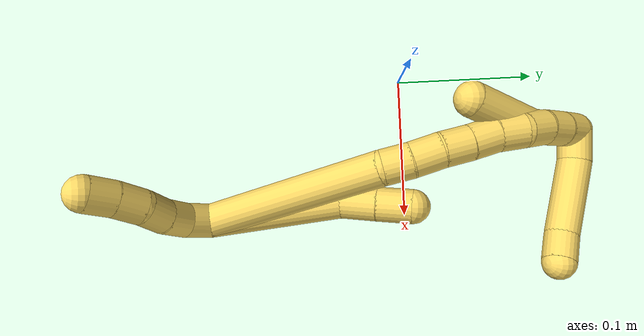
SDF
<sdf version="1.7">
 <world name="default">
  <model name="5">
   <static>0</static>
   <link name="5">
    <collision name="collision-cylinder-e_1_2_8">
     <pose>0.000269 0.026521 -0.040854 -2.56581 0.005526 -0.018662</pose>
     <geometry><cylinder><radius>0.0125</radius><length>0.097417</length></cylinder></geometry>
     <surface>
      <friction><ode><mu>1.16</mu><mu2>1.16</mu2><slip1>0</slip1><slip2>0</slip2></ode></friction>
      <contact><ode><kp>1e+06</kp><kd>1</kd><max_vel>0</max_vel><min_depth>0.001</min_depth></ode></contact>
     </surface>
    </collision>
    <visual name="visual-cylinder-e_1_2_8">
     <pose>0.000269 0.026521 -0.040854 -2.56581 0.005526 -0.018662</pose>
     <geometry><cylinder><radius>0.0125</radius><length>0.097417</length></cylinder></geometry>
     <material><ambient>1 0.858824 0.4 1</ambient></material>
    </visual>
    <collision name="collision-cylinder-e_2_8_9">
     <pose>0.003978 0.061285 -0.091705 -2.45208 0.259528 -0.697132</pose>
     <geometry><cylinder><radius>0.0125</radius><length>0.02681</length></cylinder></geometry>
     <surface>
      <friction><ode><mu>1.16</mu><mu2>1.16</mu2><slip1>0</slip1><slip2>0</slip2></ode></friction>
      <contact><ode><kp>1e+06</kp><kd>1</kd><max_vel>0</max_vel><min_depth>0.001</min_depth></ode></contact>
     </surface>
    </collision>
    <visual name="visual-cylinder-e_2_8_9">
     <pose>0.003978 0.061285 -0.091705 -2.45208 0.259528 -0.697132</pose>
     <geometry><cylinder><radius>0.0125</radius><length>0.02681</length></cylinder></geometry>
     <material><ambient>1 0.858824 0.4 1</ambient></material>
    </visual>
    <collision name="collision-cylinder-e_3_9_6">
     <pose>0.010509 0.077171 -0.111605 -2.48421 0.242187 -0.685426</pose>
     <geometry><cylinder><radius>0.0125</radius><length>0.025773</length></cylinder></geometry>
     <surface>
      <friction><ode><mu>1.16</mu><mu2>1.16</mu2><slip1>0</slip1><slip2>0</slip2></ode></friction>
      <contact><ode><kp>1e+06</kp><kd>1</kd><max_vel>0</max_vel><min_depth>0.001</min_depth></ode></contact>
     </surface>
    </collision>
    <visual name="visual-cylinder-e_3_9_6">
     <pose>0.010509 0.077171 -0.111605 -2.48421 0.242187 -0.685426</pose>
     <geometry><cylinder><radius>0.0125</radius><length>0.025773</length></cylinder></geometry>
     <material><ambient>1 0.858824 0.4 1</ambient></material>
    </visual>
    <collision name="collision-cylinder-e_1_2_10">
     <pose>-0.000298 0.001454 0.009889 -0.145987 -0.029787 0.002178</pose>
     <geometry><cylinder><radius>0.0125</radius><length>0.02</length></cylinder></geometry>
     <surface>
      <friction><ode><mu>1.16</mu><mu2>1.16</mu2><slip1>0</slip1><slip2>0</slip2></ode></friction>
      <contact><ode><kp>1e+06</kp><kd>1</kd><max_vel>0</max_vel><min_depth>0.001</min_depth></ode></contact>
     </surface>
    </collision>
    <visual name="visual-cylinder-e_1_2_10">
     <pose>-0.000298 0.001454 0.009889 -0.145987 -0.029787 0.002178</pose>
     <geometry><cylinder><radius>0.0125</radius><length>0.02</length></cylinder></geometry>
     <material><ambient>1 0.858824 0.4 1</ambient></material>
    </visual>
    <collision name="collision-cylinder-e_2_10_11">
     <pose>-0.001294 0.0076 0.028582 -0.489727 -0.069922 0.017479</pose>
     <geometry><cylinder><radius>0.0125</radius><length>0.02</length></cylinder></geometry>
     <surface>
      <friction><ode><mu>1.16</mu><mu2>1.16</mu2><slip1>0</slip1><slip2>0</slip2></ode></friction>
      <contact><ode><kp>1e+06</kp><kd>1</kd><max_vel>0</max_vel><min_depth>0.001</min_depth></ode></contact>
     </surface>
    </collision>
    <visual name="visual-cylinder-e_2_10_11">
     <pose>-0.001294 0.0076 0.028582 -0.489727 -0.069922 0.017479</pose>
     <geometry><cylinder><radius>0.0125</radius><length>0.02</length></cylinder></geometry>
     <material><ambient>1 0.858824 0.4 1</ambient></material>
    </visual>
    <collision name="collision-cylinder-e_3_11_12">
     <pose>-0.004221 0.017695 0.045499 -0.587354 -0.224663 0.068204</pose>
     <geometry><cylinder><radius>0.0125</radius><length>0.02</length></cylinder></geometry>
     <surface>
      <friction><ode><mu>1.16</mu><mu2>1.16</mu2><slip1>0</slip1><slip2>0</slip2></ode></friction>
      <contact><ode><kp>1e+06</kp><kd>1</kd><max_vel>0</max_vel><min_depth>0.001</min_depth></ode></contact>
     </surface>
    </collision>
    <visual name="visual-cylinder-e_3_11_12">
     <pose>-0.004221 0.017695 0.045499 -0.587354 -0.224663 0.068204</pose>
     <geometry><cylinder><radius>0.0125</radius><length>0.02</length></cylinder></geometry>
     <material><ambient>1 0.858824 0.4 1</ambient></material>
    </visual>
    <collision name="collision-cylinder-e_4_12_13">
     <pose>-0.008782 0.025783 0.06296 -0.279771 -0.235571 0.033321</pose>
     <geometry><cylinder><radius>0.0125</radius><length>0.02</length></cylinder></geometry>
     <surface>
      <friction><ode><mu>1.16</mu><mu2>1.16</mu2><slip1>0</slip1><slip2>0</slip2></ode></friction>
      <contact><ode><kp>1e+06</kp><kd>1</kd><max_vel>0</max_vel><min_depth>0.001</min_depth></ode></contact>
     </surface>
    </collision>
    <visual name="visual-cylinder-e_4_12_13">
     <pose>-0.008782 0.025783 0.06296 -0.279771 -0.235571 0.033321</pose>
     <geometry><cylinder><radius>0.0125</radius><length>0.02</length></cylinder></geometry>
     <material><ambient>1 0.858824 0.4 1</ambient></material>
    </visual>
    <collision name="collision-cylinder-e_5_13_5">
     <pose>-0.012407 0.030901 0.081919 -0.247934 -0.12942 0.016149</pose>
     <geometry><cylinder><radius>0.0125</radius><length>0.02</length></cylinder></geometry>
     <surface>
      <friction><ode><mu>1.16</mu><mu2>1.16</mu2><slip1>0</slip1><slip2>0</slip2></ode></friction>
      <contact><ode><kp>1e+06</kp><kd>1</kd><max_vel>0</max_vel><min_depth>0.001</min_depth></ode></contact>
     </surface>
    </collision>
    <visual name="visual-cylinder-e_5_13_5">
     <pose>-0.012407 0.030901 0.081919 -0.247934 -0.12942 0.016149</pose>
     <geometry><cylinder><radius>0.0125</radius><length>0.02</length></cylinder></geometry>
     <material><ambient>1 0.858824 0.4 1</ambient></material>
    </visual>
    <collision name="collision-cylinder-e_1_2_14">
     <pose>-0.004015 0.054619 -0.042295 -2.2297 -0.058053 0.118272</pose>
     <geometry><cylinder><radius>0.0125</radius><length>0.138394</length></cylinder></geometry>
     <surface>
      <friction><ode><mu>1.16</mu><mu2>1.16</mu2><slip1>0</slip1><slip2>0</slip2></ode></friction>
      <contact><ode><kp>1e+06</kp><kd>1</kd><max_vel>0</max_vel><min_depth>0.001</min_depth></ode></contact>
     </surface>
    </collision>
    <visual name="visual-cylinder-e_1_2_14">
     <pose>-0.004015 0.054619 -0.042295 -2.2297 -0.058053 0.118272</pose>
     <geometry><cylinder><radius>0.0125</radius><length>0.138394</length></cylinder></geometry>
     <material><ambient>1 0.858824 0.4 1</ambient></material>
    </visual>
    <collision name="collision-cylinder-e_2_14_15">
     <pose>-0.009073 0.114617 -0.092988 -2.57203 -0.104199 0.352567</pose>
     <geometry><cylinder><radius>0.0125</radius><length>0.020055</length></cylinder></geometry>
     <surface>
      <friction><ode><mu>1.16</mu><mu2>1.16</mu2><slip1>0</slip1><slip2>0</slip2></ode></friction>
      <contact><ode><kp>1e+06</kp><kd>1</kd><max_vel>0</max_vel><min_depth>0.001</min_depth></ode></contact>
     </surface>
    </collision>
    <visual name="visual-cylinder-e_2_14_15">
     <pose>-0.009073 0.114617 -0.092988 -2.57203 -0.104199 0.352567</pose>
     <geometry><cylinder><radius>0.0125</radius><length>0.020055</length></cylinder></geometry>
     <material><ambient>1 0.858824 0.4 1</ambient></material>
    </visual>
    <collision name="collision-cylinder-e_3_15_16">
     <pose>-0.012093 0.125138 -0.110405 -2.62328 -0.188231 0.684109</pose>
     <geometry><cylinder><radius>0.0125</radius><length>0.021137</length></cylinder></geometry>
     <surface>
      <friction><ode><mu>1.16</mu><mu2>1.16</mu2><slip1>0</slip1><slip2>0</slip2></ode></friction>
      <contact><ode><kp>1e+06</kp><kd>1</kd><max_vel>0</max_vel><min_depth>0.001</min_depth></ode></contact>
     </surface>
    </collision>
    <visual name="visual-cylinder-e_3_15_16">
     <pose>-0.012093 0.125138 -0.110405 -2.62328 -0.188231 0.684109</pose>
     <geometry><cylinder><radius>0.0125</radius><length>0.021137</length></cylinder></geometry>
     <material><ambient>1 0.858824 0.4 1</ambient></material>
    </visual>
    <collision name="collision-cylinder-e_4_16_17">
     <pose>-0.015549 0.133988 -0.12868 -2.76071 -0.147127 0.730297</pose>
     <geometry><cylinder><radius>0.0125</radius><length>0.020161</length></cylinder></geometry>
     <surface>
      <friction><ode><mu>1.16</mu><mu2>1.16</mu2><slip1>0</slip1><slip2>0</slip2></ode></friction>
      <contact><ode><kp>1e+06</kp><kd>1</kd><max_vel>0</max_vel><min_depth>0.001</min_depth></ode></contact>
     </surface>
    </collision>
    <visual name="visual-cylinder-e_4_16_17">
     <pose>-0.015549 0.133988 -0.12868 -2.76071 -0.147127 0.730297</pose>
     <geometry><cylinder><radius>0.0125</radius><length>0.020161</length></cylinder></geometry>
     <material><ambient>1 0.858824 0.4 1</ambient></material>
    </visual>
    <collision name="collision-cylinder-e_5_17_18">
     <pose>-0.019085 0.14121 -0.147202 -2.77893 -0.2048 1.0217</pose>
     <geometry><cylinder><radius>0.0125</radius><length>0.020241</length></cylinder></geometry>
     <surface>
      <friction><ode><mu>1.16</mu><mu2>1.16</mu2><slip1>0</slip1><slip2>0</slip2></ode></friction>
      <contact><ode><kp>1e+06</kp><kd>1</kd><max_vel>0</max_vel><min_depth>0.001</min_depth></ode></contact>
     </surface>
    </collision>
    <visual name="visual-cylinder-e_5_17_18">
     <pose>-0.019085 0.14121 -0.147202 -2.77893 -0.2048 1.0217</pose>
     <geometry><cylinder><radius>0.0125</radius><length>0.020241</length></cylinder></geometry>
     <material><ambient>1 0.858824 0.4 1</ambient></material>
    </visual>
    <collision name="collision-cylinder-e_6_18_19">
     <pose>-0.021712 0.148083 -0.165875 -2.79882 -0.056947 0.326182</pose>
     <geometry><cylinder><radius>0.0125</radius><length>0.020011</length></cylinder></geometry>
     <surface>
      <friction><ode><mu>1.16</mu><mu2>1.16</mu2><slip1>0</slip1><slip2>0</slip2></ode></friction>
      <contact><ode><kp>1e+06</kp><kd>1</kd><max_vel>0</max_vel><min_depth>0.001</min_depth></ode></contact>
     </surface>
    </collision>
    <visual name="visual-cylinder-e_6_18_19">
     <pose>-0.021712 0.148083 -0.165875 -2.79882 -0.056947 0.326182</pose>
     <geometry><cylinder><radius>0.0125</radius><length>0.020011</length></cylinder></geometry>
     <material><ambient>1 0.858824 0.4 1</ambient></material>
    </visual>
    <collision name="collision-cylinder-e_7_19_20">
     <pose>-0.023642 0.151465 -0.18519 -3.13915 -0.13643 3.10578</pose>
     <geometry><cylinder><radius>0.0125</radius><length>0.020001</length></cylinder></geometry>
     <surface>
      <friction><ode><mu>1.16</mu><mu2>1.16</mu2><slip1>0</slip1><slip2>0</slip2></ode></friction>
      <contact><ode><kp>1e+06</kp><kd>1</kd><max_vel>0</max_vel><min_depth>0.001</min_depth></ode></contact>
     </surface>
    </collision>
    <visual name="visual-cylinder-e_7_19_20">
     <pose>-0.023642 0.151465 -0.18519 -3.13915 -0.13643 3.10578</pose>
     <geometry><cylinder><radius>0.0125</radius><length>0.020001</length></cylinder></geometry>
     <material><ambient>1 0.858824 0.4 1</ambient></material>
    </visual>
    <collision name="collision-cylinder-e_8_20_21">
     <pose>-0.025263 0.150244 -0.205017 3.01676 -0.026121 -0.412029</pose>
     <geometry><cylinder><radius>0.0125</radius><length>0.02</length></cylinder></geometry>
     <surface>
      <friction><ode><mu>1.16</mu><mu2>1.16</mu2><slip1>0</slip1><slip2>0</slip2></ode></friction>
      <contact><ode><kp>1e+06</kp><kd>1</kd><max_vel>0</max_vel><min_depth>0.001</min_depth></ode></contact>
     </surface>
    </collision>
    <visual name="visual-cylinder-e_8_20_21">
     <pose>-0.025263 0.150244 -0.205017 3.01676 -0.026121 -0.412029</pose>
     <geometry><cylinder><radius>0.0125</radius><length>0.02</length></cylinder></geometry>
     <material><ambient>1 0.858824 0.4 1</ambient></material>
    </visual>
    <collision name="collision-cylinder-e_9_21_1">
     <pose>-0.026028 0.146886 -0.224697 2.9284 -0.050393 -0.462633</pose>
     <geometry><cylinder><radius>0.0125</radius><length>0.02</length></cylinder></geometry>
     <surface>
      <friction><ode><mu>1.16</mu><mu2>1.16</mu2><slip1>0</slip1><slip2>0</slip2></ode></friction>
      <contact><ode><kp>1e+06</kp><kd>1</kd><max_vel>0</max_vel><min_depth>0.001</min_depth></ode></contact>
     </surface>
    </collision>
    <visual name="visual-cylinder-e_9_21_1">
     <pose>-0.026028 0.146886 -0.224697 2.9284 -0.050393 -0.462633</pose>
     <geometry><cylinder><radius>0.0125</radius><length>0.02</length></cylinder></geometry>
     <material><ambient>1 0.858824 0.4 1</ambient></material>
    </visual>
    <collision name="collision-cylinder-e_1_1_22">
     <pose>-0.015407 0.142003 -0.233754 1.32197 1.31931 1.08544</pose>
     <geometry><cylinder><radius>0.0125</radius><length>0.022972</length></cylinder></geometry>
     <surface>
      <friction><ode><mu>1.16</mu><mu2>1.16</mu2><slip1>0</slip1><slip2>0</slip2></ode></friction>
      <contact><ode><kp>1e+06</kp><kd>1</kd><max_vel>0</max_vel><min_depth>0.001</min_depth></ode></contact>
     </surface>
    </collision>
    <visual name="visual-cylinder-e_1_1_22">
     <pose>-0.015407 0.142003 -0.233754 1.32197 1.31931 1.08544</pose>
     <geometry><cylinder><radius>0.0125</radius><length>0.022972</length></cylinder></geometry>
     <material><ambient>1 0.858824 0.4 1</ambient></material>
    </visual>
    <collision name="collision-cylinder-e_2_22_23">
     <pose>0.021751 0.133607 -0.224262 0.569361 1.18958 0.390882</pose>
     <geometry><cylinder><radius>0.0125</radius><length>0.056093</length></cylinder></geometry>
     <surface>
      <friction><ode><mu>1.16</mu><mu2>1.16</mu2><slip1>0</slip1><slip2>0</slip2></ode></friction>
      <contact><ode><kp>1e+06</kp><kd>1</kd><max_vel>0</max_vel><min_depth>0.001</min_depth></ode></contact>
     </surface>
    </collision>
    <visual name="visual-cylinder-e_2_22_23">
     <pose>0.021751 0.133607 -0.224262 0.569361 1.18958 0.390882</pose>
     <geometry><cylinder><radius>0.0125</radius><length>0.056093</length></cylinder></geometry>
     <material><ambient>1 0.858824 0.4 1</ambient></material>
    </visual>
    <collision name="collision-cylinder-e_3_23_4">
     <pose>0.057324 0.128099 -0.211167 -0.027037 1.14671 -0.017459</pose>
     <geometry><cylinder><radius>0.0125</radius><length>0.020935</length></cylinder></geometry>
     <surface>
      <friction><ode><mu>1.16</mu><mu2>1.16</mu2><slip1>0</slip1><slip2>0</slip2></ode></friction>
      <contact><ode><kp>1e+06</kp><kd>1</kd><max_vel>0</max_vel><min_depth>0.001</min_depth></ode></contact>
     </surface>
    </collision>
    <visual name="visual-cylinder-e_3_23_4">
     <pose>0.057324 0.128099 -0.211167 -0.027037 1.14671 -0.017459</pose>
     <geometry><cylinder><radius>0.0125</radius><length>0.020935</length></cylinder></geometry>
     <material><ambient>1 0.858824 0.4 1</ambient></material>
    </visual>
    <collision name="collision-cylinder-e_1_1_24">
     <pose>-0.02712 0.144982 -0.212645 -0.009578 -0.026971 0.000129</pose>
     <geometry><cylinder><radius>0.0125</radius><length>0.043644</length></cylinder></geometry>
     <surface>
      <friction><ode><mu>1.16</mu><mu2>1.16</mu2><slip1>0</slip1><slip2>0</slip2></ode></friction>
      <contact><ode><kp>1e+06</kp><kd>1</kd><max_vel>0</max_vel><min_depth>0.001</min_depth></ode></contact>
     </surface>
    </collision>
    <visual name="visual-cylinder-e_1_1_24">
     <pose>-0.02712 0.144982 -0.212645 -0.009578 -0.026971 0.000129</pose>
     <geometry><cylinder><radius>0.0125</radius><length>0.043644</length></cylinder></geometry>
     <material><ambient>1 0.858824 0.4 1</ambient></material>
    </visual>
    <collision name="collision-cylinder-e_2_24_3">
     <pose>-0.035544 0.147471 -0.163861 -0.084345 -0.281774 0.011969</pose>
     <geometry><cylinder><radius>0.0125</radius><length>0.056356</length></cylinder></geometry>
     <surface>
      <friction><ode><mu>1.16</mu><mu2>1.16</mu2><slip1>0</slip1><slip2>0</slip2></ode></friction>
      <contact><ode><kp>1e+06</kp><kd>1</kd><max_vel>0</max_vel><min_depth>0.001</min_depth></ode></contact>
     </surface>
    </collision>
    <visual name="visual-cylinder-e_2_24_3">
     <pose>-0.035544 0.147471 -0.163861 -0.084345 -0.281774 0.011969</pose>
     <geometry><cylinder><radius>0.0125</radius><length>0.056356</length></cylinder></geometry>
     <material><ambient>1 0.858824 0.4 1</ambient></material>
    </visual>
    <collision name="collision-sphere-3">
     <pose>-0.043379 0.149752 -0.136891 0 -0 0</pose>
     <geometry><sphere><radius>0.0125</radius></sphere></geometry>
     <surface>
      <friction><ode><mu>1.16</mu><mu2>1.16</mu2><slip1>0</slip1><slip2>0</slip2></ode></friction>
      <contact><ode><kp>1e+06</kp><kd>1</kd><max_vel>0</max_vel><min_depth>0.001</min_depth></ode></contact>
     </surface>
    </collision>
    <visual name="visual-sphere-3">
     <pose>-0.043379 0.149752 -0.136891 0 -0 0</pose>
     <geometry><sphere><radius>0.0125</radius></sphere></geometry>
     <material><ambient>1 0.858824 0.4 1</ambient></material>
    </visual>
    <collision name="collision-sphere-24">
     <pose>-0.027709 0.145191 -0.190831 0 -0 0</pose>
     <geometry><sphere><radius>0.0125</radius></sphere></geometry>
     <surface>
      <friction><ode><mu>1.16</mu><mu2>1.16</mu2><slip1>0</slip1><slip2>0</slip2></ode></friction>
      <contact><ode><kp>1e+06</kp><kd>1</kd><max_vel>0</max_vel><min_depth>0.001</min_depth></ode></contact>
     </surface>
    </collision>
    <visual name="visual-sphere-24">
     <pose>-0.027709 0.145191 -0.190831 0 -0 0</pose>
     <geometry><sphere><radius>0.0125</radius></sphere></geometry>
     <material><ambient>1 0.858824 0.4 1</ambient></material>
    </visual>
    <collision name="collision-sphere-4">
     <pose>0.066864 0.128215 -0.206862 0 -0 0</pose>
     <geometry><sphere><radius>0.0125</radius></sphere></geometry>
     <surface>
      <friction><ode><mu>1.16</mu><mu2>1.16</mu2><slip1>0</slip1><slip2>0</slip2></ode></friction>
      <contact><ode><kp>1e+06</kp><kd>1</kd><max_vel>0</max_vel><min_depth>0.001</min_depth></ode></contact>
     </surface>
    </collision>
    <visual name="visual-sphere-4">
     <pose>0.066864 0.128215 -0.206862 0 -0 0</pose>
     <geometry><sphere><radius>0.0125</radius></sphere></geometry>
     <material><ambient>1 0.858824 0.4 1</ambient></material>
    </visual>
    <collision name="collision-sphere-23">
     <pose>0.047784 0.127982 -0.215473 0 -0 0</pose>
     <geometry><sphere><radius>0.0125</radius></sphere></geometry>
     <surface>
      <friction><ode><mu>1.16</mu><mu2>1.16</mu2><slip1>0</slip1><slip2>0</slip2></ode></friction>
      <contact><ode><kp>1e+06</kp><kd>1</kd><max_vel>0</max_vel><min_depth>0.001</min_depth></ode></contact>
     </surface>
    </collision>
    <visual name="visual-sphere-23">
     <pose>0.047784 0.127982 -0.215473 0 -0 0</pose>
     <geometry><sphere><radius>0.0125</radius></sphere></geometry>
     <material><ambient>1 0.858824 0.4 1</ambient></material>
    </visual>
    <collision name="collision-sphere-22">
     <pose>-0.004282 0.139233 -0.23305 0 -0 0</pose>
     <geometry><sphere><radius>0.0125</radius></sphere></geometry>
     <surface>
      <friction><ode><mu>1.16</mu><mu2>1.16</mu2><slip1>0</slip1><slip2>0</slip2></ode></friction>
      <contact><ode><kp>1e+06</kp><kd>1</kd><max_vel>0</max_vel><min_depth>0.001</min_depth></ode></contact>
     </surface>
    </collision>
    <visual name="visual-sphere-22">
     <pose>-0.004282 0.139233 -0.23305 0 -0 0</pose>
     <geometry><sphere><radius>0.0125</radius></sphere></geometry>
     <material><ambient>1 0.858824 0.4 1</ambient></material>
    </visual>
    <collision name="collision-sphere-1">
     <pose>-0.026532 0.144773 -0.234458 0 -0 0</pose>
     <geometry><sphere><radius>0.0125</radius></sphere></geometry>
     <surface>
      <friction><ode><mu>1.16</mu><mu2>1.16</mu2><slip1>0</slip1><slip2>0</slip2></ode></friction>
      <contact><ode><kp>1e+06</kp><kd>1</kd><max_vel>0</max_vel><min_depth>0.001</min_depth></ode></contact>
     </surface>
    </collision>
    <visual name="visual-sphere-1">
     <pose>-0.026532 0.144773 -0.234458 0 -0 0</pose>
     <geometry><sphere><radius>0.0125</radius></sphere></geometry>
     <material><ambient>1 0.858824 0.4 1</ambient></material>
    </visual>
    <collision name="collision-sphere-21">
     <pose>-0.025524 0.148999 -0.214935 0 -0 0</pose>
     <geometry><sphere><radius>0.0125</radius></sphere></geometry>
     <surface>
      <friction><ode><mu>1.16</mu><mu2>1.16</mu2><slip1>0</slip1><slip2>0</slip2></ode></friction>
      <contact><ode><kp>1e+06</kp><kd>1</kd><max_vel>0</max_vel><min_depth>0.001</min_depth></ode></contact>
     </surface>
    </collision>
    <visual name="visual-sphere-21">
     <pose>-0.025524 0.148999 -0.214935 0 -0 0</pose>
     <geometry><sphere><radius>0.0125</radius></sphere></geometry>
     <material><ambient>1 0.858824 0.4 1</ambient></material>
    </visual>
    <collision name="collision-sphere-11">
     <pose>-0.001993 0.012293 0.037385 0 -0 0</pose>
     <geometry><sphere><radius>0.0125</radius></sphere></geometry>
     <surface>
      <friction><ode><mu>1.16</mu><mu2>1.16</mu2><slip1>0</slip1><slip2>0</slip2></ode></friction>
      <contact><ode><kp>1e+06</kp><kd>1</kd><max_vel>0</max_vel><min_depth>0.001</min_depth></ode></contact>
     </surface>
    </collision>
    <visual name="visual-sphere-11">
     <pose>-0.001993 0.012293 0.037385 0 -0 0</pose>
     <geometry><sphere><radius>0.0125</radius></sphere></geometry>
     <material><ambient>1 0.858824 0.4 1</ambient></material>
    </visual>
    <collision name="collision-sphere-10">
     <pose>-0.000596 0.002908 0.019778 0 -0 0</pose>
     <geometry><sphere><radius>0.0125</radius></sphere></geometry>
     <surface>
      <friction><ode><mu>1.16</mu><mu2>1.16</mu2><slip1>0</slip1><slip2>0</slip2></ode></friction>
      <contact><ode><kp>1e+06</kp><kd>1</kd><max_vel>0</max_vel><min_depth>0.001</min_depth></ode></contact>
     </surface>
    </collision>
    <visual name="visual-sphere-10">
     <pose>-0.000596 0.002908 0.019778 0 -0 0</pose>
     <geometry><sphere><radius>0.0125</radius></sphere></geometry>
     <material><ambient>1 0.858824 0.4 1</ambient></material>
    </visual>
    <collision name="collision-sphere-6">
     <pose>0.013599 0.084815 -0.121508 0 -0 0</pose>
     <geometry><sphere><radius>0.0125</radius></sphere></geometry>
     <surface>
      <friction><ode><mu>1.16</mu><mu2>1.16</mu2><slip1>0</slip1><slip2>0</slip2></ode></friction>
      <contact><ode><kp>1e+06</kp><kd>1</kd><max_vel>0</max_vel><min_depth>0.001</min_depth></ode></contact>
     </surface>
    </collision>
    <visual name="visual-sphere-6">
     <pose>0.013599 0.084815 -0.121508 0 -0 0</pose>
     <geometry><sphere><radius>0.0125</radius></sphere></geometry>
     <material><ambient>1 0.858824 0.4 1</ambient></material>
    </visual>
    <collision name="collision-sphere-9">
     <pose>0.007418 0.069527 -0.101701 0 -0 0</pose>
     <geometry><sphere><radius>0.0125</radius></sphere></geometry>
     <surface>
      <friction><ode><mu>1.16</mu><mu2>1.16</mu2><slip1>0</slip1><slip2>0</slip2></ode></friction>
      <contact><ode><kp>1e+06</kp><kd>1</kd><max_vel>0</max_vel><min_depth>0.001</min_depth></ode></contact>
     </surface>
    </collision>
    <visual name="visual-sphere-9">
     <pose>0.007418 0.069527 -0.101701 0 -0 0</pose>
     <geometry><sphere><radius>0.0125</radius></sphere></geometry>
     <material><ambient>1 0.858824 0.4 1</ambient></material>
    </visual>
    <collision name="collision-sphere-2">
     <geometry><sphere><radius>0.0125</radius></sphere></geometry>
     <surface>
      <friction><ode><mu>1.16</mu><mu2>1.16</mu2><slip1>0</slip1><slip2>0</slip2></ode></friction>
      <contact><ode><kp>1e+06</kp><kd>1</kd><max_vel>0</max_vel><min_depth>0.001</min_depth></ode></contact>
     </surface>
    </collision>
    <visual name="visual-sphere-2">
     <geometry><sphere><radius>0.0125</radius></sphere></geometry>
     <material><ambient>1 0.858824 0.4 1</ambient></material>
    </visual>
    <collision name="collision-sphere-19">
     <pose>-0.022282 0.15144 -0.175283 0 -0 0</pose>
     <geometry><sphere><radius>0.0125</radius></sphere></geometry>
     <surface>
      <friction><ode><mu>1.16</mu><mu2>1.16</mu2><slip1>0</slip1><slip2>0</slip2></ode></friction>
      <contact><ode><kp>1e+06</kp><kd>1</kd><max_vel>0</max_vel><min_depth>0.001</min_depth></ode></contact>
     </surface>
    </collision>
    <visual name="visual-sphere-19">
     <pose>-0.022282 0.15144 -0.175283 0 -0 0</pose>
     <geometry><sphere><radius>0.0125</radius></sphere></geometry>
     <material><ambient>1 0.858824 0.4 1</ambient></material>
    </visual>
    <collision name="collision-sphere-8">
     <pose>0.000538 0.053043 -0.081709 0 -0 0</pose>
     <geometry><sphere><radius>0.0125</radius></sphere></geometry>
     <surface>
      <friction><ode><mu>1.16</mu><mu2>1.16</mu2><slip1>0</slip1><slip2>0</slip2></ode></friction>
      <contact><ode><kp>1e+06</kp><kd>1</kd><max_vel>0</max_vel><min_depth>0.001</min_depth></ode></contact>
     </surface>
    </collision>
    <visual name="visual-sphere-8">
     <pose>0.000538 0.053043 -0.081709 0 -0 0</pose>
     <geometry><sphere><radius>0.0125</radius></sphere></geometry>
     <material><ambient>1 0.858824 0.4 1</ambient></material>
    </visual>
    <collision name="collision-sphere-12">
     <pose>-0.006449 0.023097 0.053614 0 -0 0</pose>
     <geometry><sphere><radius>0.0125</radius></sphere></geometry>
     <surface>
      <friction><ode><mu>1.16</mu><mu2>1.16</mu2><slip1>0</slip1><slip2>0</slip2></ode></friction>
      <contact><ode><kp>1e+06</kp><kd>1</kd><max_vel>0</max_vel><min_depth>0.001</min_depth></ode></contact>
     </surface>
    </collision>
    <visual name="visual-sphere-12">
     <pose>-0.006449 0.023097 0.053614 0 -0 0</pose>
     <geometry><sphere><radius>0.0125</radius></sphere></geometry>
     <material><ambient>1 0.858824 0.4 1</ambient></material>
    </visual>
    <collision name="collision-sphere-13">
     <pose>-0.011116 0.028468 0.072306 0 -0 0</pose>
     <geometry><sphere><radius>0.0125</radius></sphere></geometry>
     <surface>
      <friction><ode><mu>1.16</mu><mu2>1.16</mu2><slip1>0</slip1><slip2>0</slip2></ode></friction>
      <contact><ode><kp>1e+06</kp><kd>1</kd><max_vel>0</max_vel><min_depth>0.001</min_depth></ode></contact>
     </surface>
    </collision>
    <visual name="visual-sphere-13">
     <pose>-0.011116 0.028468 0.072306 0 -0 0</pose>
     <geometry><sphere><radius>0.0125</radius></sphere></geometry>
     <material><ambient>1 0.858824 0.4 1</ambient></material>
    </visual>
    <collision name="collision-sphere-5">
     <pose>-0.013698 0.033335 0.091532 0 -0 0</pose>
     <geometry><sphere><radius>0.0125</radius></sphere></geometry>
     <surface>
      <friction><ode><mu>1.16</mu><mu2>1.16</mu2><slip1>0</slip1><slip2>0</slip2></ode></friction>
      <contact><ode><kp>1e+06</kp><kd>1</kd><max_vel>0</max_vel><min_depth>0.001</min_depth></ode></contact>
     </surface>
    </collision>
    <visual name="visual-sphere-5">
     <pose>-0.013698 0.033335 0.091532 0 -0 0</pose>
     <geometry><sphere><radius>0.0125</radius></sphere></geometry>
     <material><ambient>1 0.858824 0.4 1</ambient></material>
    </visual>
    <collision name="collision-sphere-14">
     <pose>-0.00803 0.109238 -0.084589 0 -0 0</pose>
     <geometry><sphere><radius>0.0125</radius></sphere></geometry>
     <surface>
      <friction><ode><mu>1.16</mu><mu2>1.16</mu2><slip1>0</slip1><slip2>0</slip2></ode></friction>
      <contact><ode><kp>1e+06</kp><kd>1</kd><max_vel>0</max_vel><min_depth>0.001</min_depth></ode></contact>
     </surface>
    </collision>
    <visual name="visual-sphere-14">
     <pose>-0.00803 0.109238 -0.084589 0 -0 0</pose>
     <geometry><sphere><radius>0.0125</radius></sphere></geometry>
     <material><ambient>1 0.858824 0.4 1</ambient></material>
    </visual>
    <collision name="collision-sphere-15">
     <pose>-0.010116 0.119995 -0.101387 0 -0 0</pose>
     <geometry><sphere><radius>0.0125</radius></sphere></geometry>
     <surface>
      <friction><ode><mu>1.16</mu><mu2>1.16</mu2><slip1>0</slip1><slip2>0</slip2></ode></friction>
      <contact><ode><kp>1e+06</kp><kd>1</kd><max_vel>0</max_vel><min_depth>0.001</min_depth></ode></contact>
     </surface>
    </collision>
    <visual name="visual-sphere-15">
     <pose>-0.010116 0.119995 -0.101387 0 -0 0</pose>
     <geometry><sphere><radius>0.0125</radius></sphere></geometry>
     <material><ambient>1 0.858824 0.4 1</ambient></material>
    </visual>
    <collision name="collision-sphere-16">
     <pose>-0.014071 0.130281 -0.119423 0 -0 0</pose>
     <geometry><sphere><radius>0.0125</radius></sphere></geometry>
     <surface>
      <friction><ode><mu>1.16</mu><mu2>1.16</mu2><slip1>0</slip1><slip2>0</slip2></ode></friction>
      <contact><ode><kp>1e+06</kp><kd>1</kd><max_vel>0</max_vel><min_depth>0.001</min_depth></ode></contact>
     </surface>
    </collision>
    <visual name="visual-sphere-16">
     <pose>-0.014071 0.130281 -0.119423 0 -0 0</pose>
     <geometry><sphere><radius>0.0125</radius></sphere></geometry>
     <material><ambient>1 0.858824 0.4 1</ambient></material>
    </visual>
    <collision name="collision-sphere-17">
     <pose>-0.017026 0.137695 -0.137938 0 -0 0</pose>
     <geometry><sphere><radius>0.0125</radius></sphere></geometry>
     <surface>
      <friction><ode><mu>1.16</mu><mu2>1.16</mu2><slip1>0</slip1><slip2>0</slip2></ode></friction>
      <contact><ode><kp>1e+06</kp><kd>1</kd><max_vel>0</max_vel><min_depth>0.001</min_depth></ode></contact>
     </surface>
    </collision>
    <visual name="visual-sphere-17">
     <pose>-0.017026 0.137695 -0.137938 0 -0 0</pose>
     <geometry><sphere><radius>0.0125</radius></sphere></geometry>
     <material><ambient>1 0.858824 0.4 1</ambient></material>
    </visual>
    <collision name="collision-sphere-18">
     <pose>-0.021143 0.144726 -0.156467 0 -0 0</pose>
     <geometry><sphere><radius>0.0125</radius></sphere></geometry>
     <surface>
      <friction><ode><mu>1.16</mu><mu2>1.16</mu2><slip1>0</slip1><slip2>0</slip2></ode></friction>
      <contact><ode><kp>1e+06</kp><kd>1</kd><max_vel>0</max_vel><min_depth>0.001</min_depth></ode></contact>
     </surface>
    </collision>
    <visual name="visual-sphere-18">
     <pose>-0.021143 0.144726 -0.156467 0 -0 0</pose>
     <geometry><sphere><radius>0.0125</radius></sphere></geometry>
     <material><ambient>1 0.858824 0.4 1</ambient></material>
    </visual>
    <collision name="collision-sphere-20">
     <pose>-0.025002 0.151489 -0.195098 0 -0 0</pose>
     <geometry><sphere><radius>0.0125</radius></sphere></geometry>
     <surface>
      <friction><ode><mu>1.16</mu><mu2>1.16</mu2><slip1>0</slip1><slip2>0</slip2></ode></friction>
      <contact><ode><kp>1e+06</kp><kd>1</kd><max_vel>0</max_vel><min_depth>0.001</min_depth></ode></contact>
     </surface>
    </collision>
    <visual name="visual-sphere-20">
     <pose>-0.025002 0.151489 -0.195098 0 -0 0</pose>
     <geometry><sphere><radius>0.0125</radius></sphere></geometry>
     <material><ambient>1 0.858824 0.4 1</ambient></material>
    </visual>
    <inertial>
     <pose>-0.006511 0.087945 -0.102489 0 -0 0</pose>
     <mass>0.75</mass>
     <inertia>
      <ixx>0.000387</ixx>
      <ixy>0</ixy>
      <ixz>0</ixz>
      <iyy>-0.000113</iyy>
      <iyz>0</iyz>
      <izz>-0.000239</izz>
     </inertia>
    </inertial>
   </link>
   <pose>0.096662 -0.143806 0.011487 1.04164 -0.24431 0.096033</pose>
  </model>
 </world>
</sdf>
